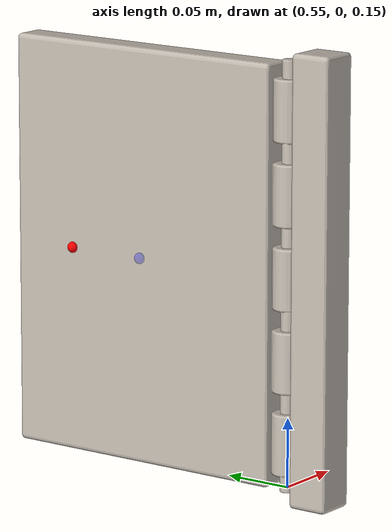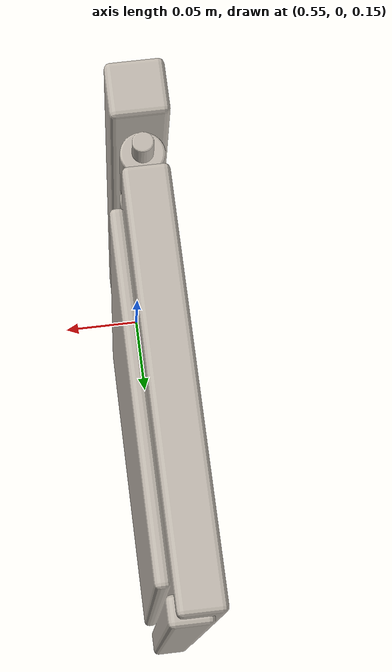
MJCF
<?xml version="1.0"?>
<mujoco model="flap">
  <compiler angle="radian" meshdir="assets" texturedir="assets"/>

  <asset>
    <texture name="flap_post_tex" type="2d" file="flap_post_tex.png"/>
    <material name="flap_post_mat" texture="flap_post_tex" specular="0.3" shininess="0.25"/>
    <mesh name="flap_post_vis" file="flap_post_vis.obj"/>
    <texture name="flap_panel_tex" type="2d" file="flap_panel_tex.png"/>
    <material name="flap_panel_mat" texture="flap_panel_tex" specular="0.4" shininess="0.3"/>
    <mesh name="flap_panel_vis" file="flap_panel_vis.obj"/>
  </asset>

  <worldbody>
    <body name="flap_base" pos="0.55 0 0.3" mocap="true">
      <!-- Jamb post, hinge pin and three static knuckles. -->
      <geom name="vis_post" type="mesh" mesh="flap_post_vis" material="flap_post_mat" contype="0" conaffinity="0" group="2" mass="0"/>
      <!-- Hinge-post collider (unchanged from the primitive asset). -->
      <geom type="box" name="flap_body" size="0.015 0.015 0.16" pos="0 -0.026 0" group="3"
            condim="3" friction="1 0.03 0.003" rgba="0.5 0.5 0.5 0.3"
            contype="2" conaffinity="1" solref="0.01 1"/>
      <!-- Base site at the panel-face centre when joint = 0 (closed). -->
      <site name="base_site" pos="-0.012 0.12 0" size="0.004" rgba="0 0 1 0.3"/>
      <body name="handle">
        <joint name="flap_hinge" type="hinge" axis="0 0 1" pos="0 0 0"
               range="-1.3997541 0" limited="true" damping="0.2"/>
        <!-- Painted-steel flap panel (postbox red) with its two moving knuckles, one mesh. -->
        <geom name="vis_flap" type="mesh" mesh="flap_panel_vis" material="flap_panel_mat" contype="0" conaffinity="0" group="2" mass="0"/>
        <!-- Flat panel, no handle: the only affordance is the face itself. -->
        <geom type="box" name="flap_panel" size="0.012 0.11 0.15" pos="0 0.12 0" group="3"
              condim="3" friction="1 0.03 0.003" rgba="0.5 0.5 0.5 0.3"
              contype="2" conaffinity="1" solref="0.01 1"/>
        <!-- Push point near the outer edge (best lever arm), on the robot-facing face. -->
        <site name="object_site" pos="-0.012 0.18 0" size="0.004" rgba="1 0 0 1"/>
      </body>
    </body>
  </worldbody>
</mujoco>
